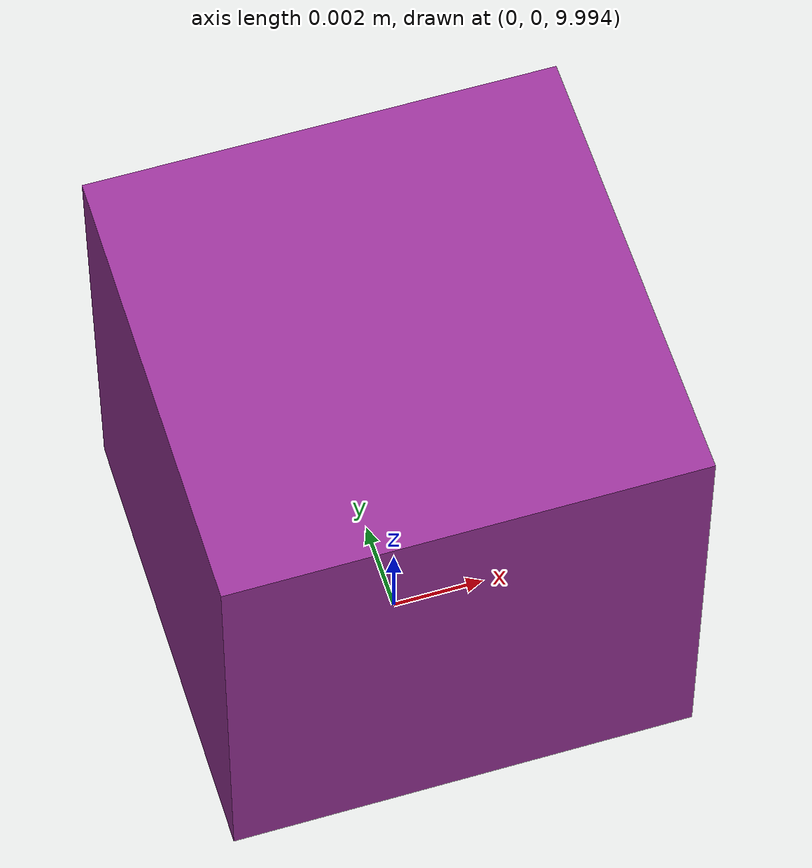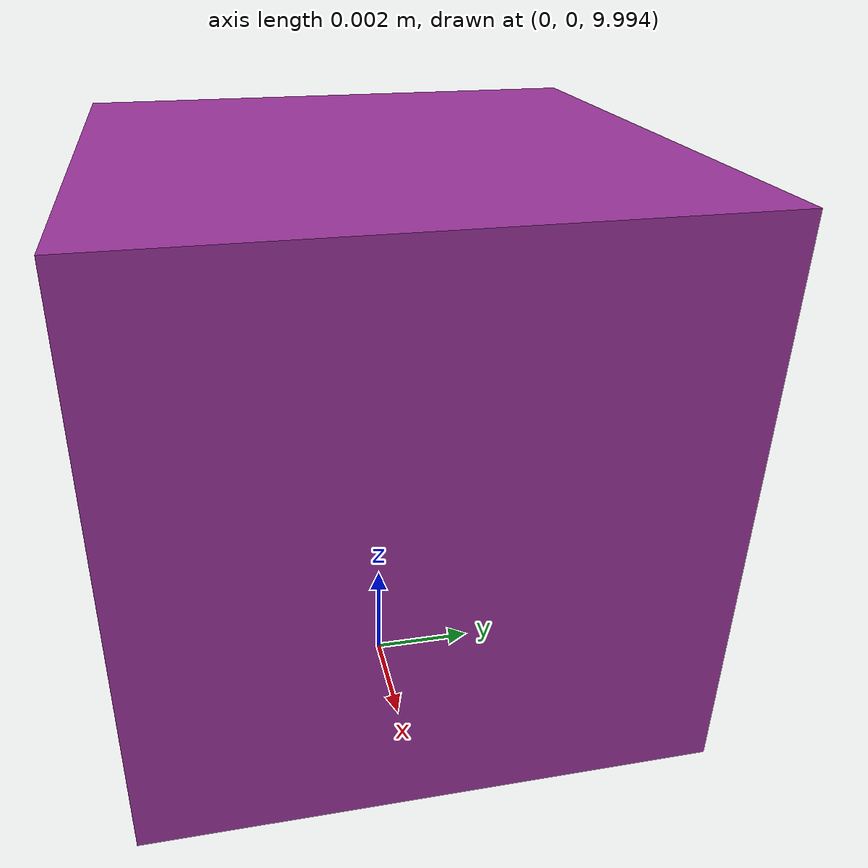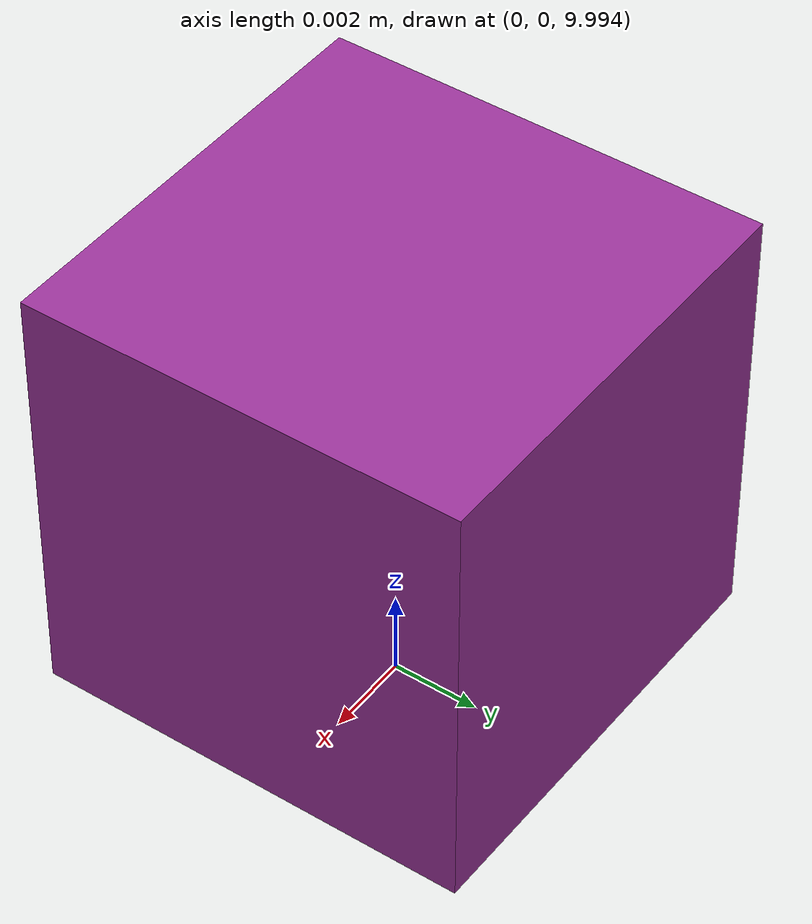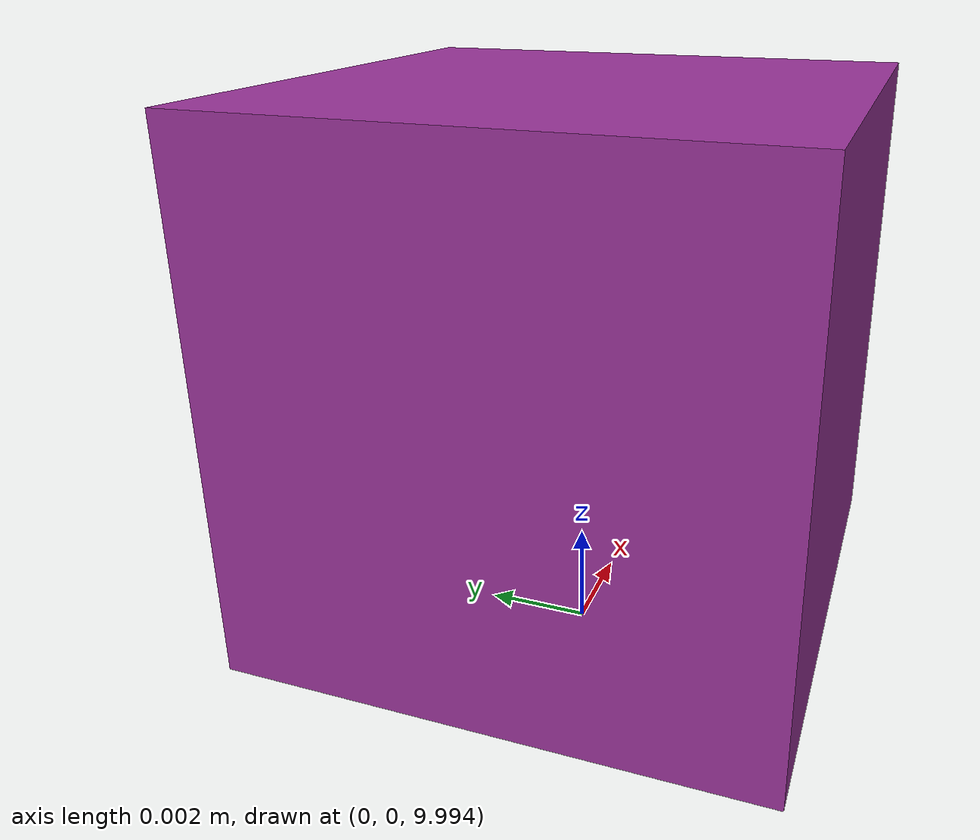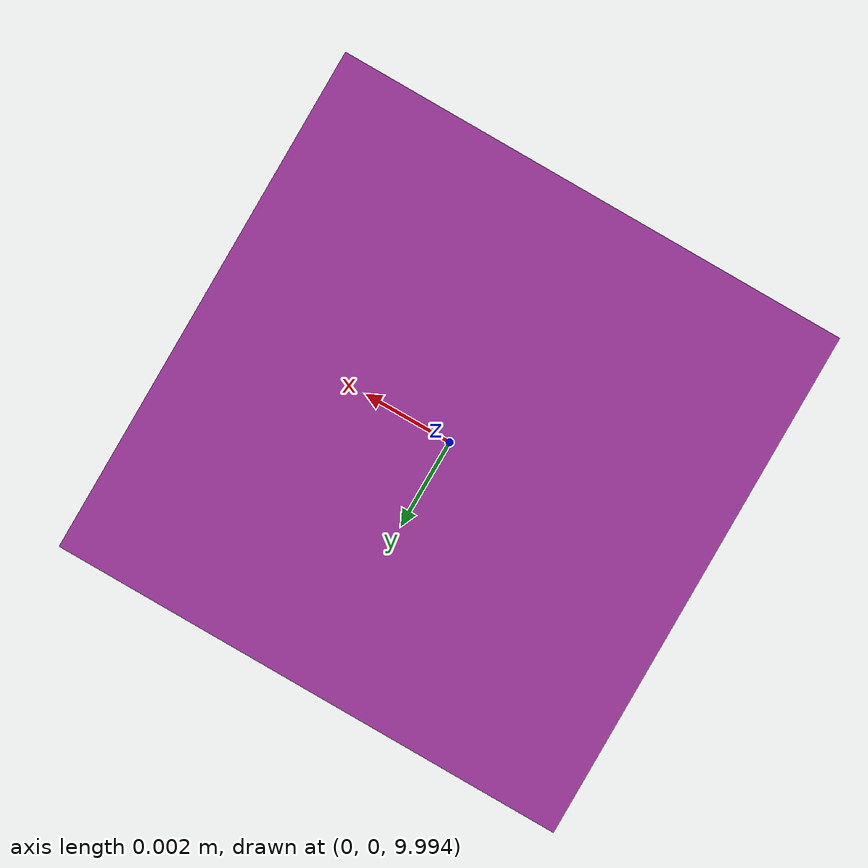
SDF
<?xml version="1.0"?>
<sdf version="1.7">
    <world name="default">
        <scene>
            <ambient>0.5 0.5 0.5 1</ambient>
        </scene>

        <physics name="1ms" type="ignored">
            <max_step_size>0.001</max_step_size>
            <real_time_factor>1.0</real_time_factor>
        </physics>
        <plugin filename="gz-sim-user-commands-system"
            name="gz::sim::systems::UserCommands">
        </plugin>
        <plugin
            filename="gz-sim-physics-system"
            name="gz::sim::systems::Physics">
        </plugin>

        <plugin
            filename="gz-sim-scene-broadcaster-system"
            name="gz::sim::systems::SceneBroadcaster">
        </plugin>

        <plugin
            filename="gz-sim-sensors-system"
            name="gz::sim::systems::Sensors">
            <render_engine>ogre2</render_engine>
        </plugin>

        <light type="directional" name="sun">
            <cast_shadows>true</cast_shadows>
            <pose>0 0 10 0 0 0</pose>
            <diffuse>0.8 0.8 0.8 1</diffuse>
            <specular>0.2 0.2 0.2 1</specular>
            <attenuation>
                <range>1000</range>
                <constant>0.9</constant>
                <linear>0.01</linear>
                <quadratic>0.001</quadratic>
            </attenuation>
            <direction>-0.5 0.1 -0.9</direction>
        </light>
        <model name="ground_plane">
            <static>true</static>
            <link name="link">
                <collision name="collision">
                    <geometry>
                        <plane>
                            <normal>0 0 1</normal>
                            <size>100 100</size>
                        </plane>
                    </geometry>
                </collision>
                <visual name="visual">
                    <geometry>
                        <plane>
                            <normal>0 0 1</normal>
                            <size>100 100</size>
                        </plane>
                    </geometry>
                    <material>
                        <ambient>0.8 0.8 0.8 1</ambient>
                        <diffuse>0.8 0.8 0.8 1</diffuse>
                        <specular>0.8 0.8 0.8 1</specular>
                    </material>
                </visual>
            </link>
        </model>

        <model name="simple_box">
            <pose degrees="true">0 0 10 0 0 0</pose> <!-- Position and orientation (X Y Z roll pitch yaw) -->
            <static>true</static>
            <link name="box_link">
                <pose>0 0 0 0 0 0</pose>

                <!-- Box geometry -->
                <collision name="box_collision">
                    <geometry>
                        <box>
                            <size>0.01 0.01 0.01</size> <!-- Size of the box (X Y Z) -->
                        </box>
                    </geometry>
                </collision>

                <visual name="box_visual">
                    <geometry>
                        <box>
                            <size>0.01 0.01 0.01</size> <!-- Size of the box (X Y Z) -->
                        </box>
                    </geometry>
                    <material>
                        <ambient>0.6 0.2 0.6 1.0</ambient> <!-- Color of the box -->
                        <diffuse>0.6 0.2 0.6 1.0</diffuse>
                    </material>
                </visual>

                <sensor name="camera" type="camera">
                    <pose degrees="true">0 0 -0.005 0 90 0</pose>
                    <camera>
                        <horizontal_fov>1.</horizontal_fov>
                        <image>
                            <width>640</width>
                            <height>480</height>
                        </image>
                        <clip>
                            <near>0.1</near>
                            <far>100</far>
                        </clip>
                    </camera>
                    <update_rate>10</update_rate>
                    <topic>camera</topic>
                </sensor>
            </link>
        </model>

        <include>
            <pose degrees="true">0 0 0.0 0 0 90</pose>
            <uri>model://arcuo</uri>
        </include>

    </world>
</sdf>

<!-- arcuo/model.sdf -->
<sdf version="1.4">
    <model name="aruco_box">
        <pose>0 0 0.5 0 0 0</pose> <!-- Position and orientation (X Y Z roll pitch yaw) -->
        <static>true</static>
        <link name="box_link">
            <pose>0 0 0 0 0 0</pose>

            <!-- Box geometry -->
            <collision name="box_collision">
                <geometry>
                    <box>
                        <size>1 1 0.01</size> <!-- Size of the box (X Y Z) -->
                    </box>
                </geometry>
            </collision>

            <visual name="box_visual">
                <geometry>
                    <box>
                        <size>1 1 0.01</size> <!-- Size of the box (X Y Z) -->
                    </box>
                </geometry>
                <material>
          <pbr>
            <metal>
              <albedo_map>materials/textures/marker_1_4_4_50.png</albedo_map>
            </metal>
          </pbr>
          <diffuse>1 1 1 1</diffuse>
        </material>
            </visual>

        </link>
    </model>
</sdf>
